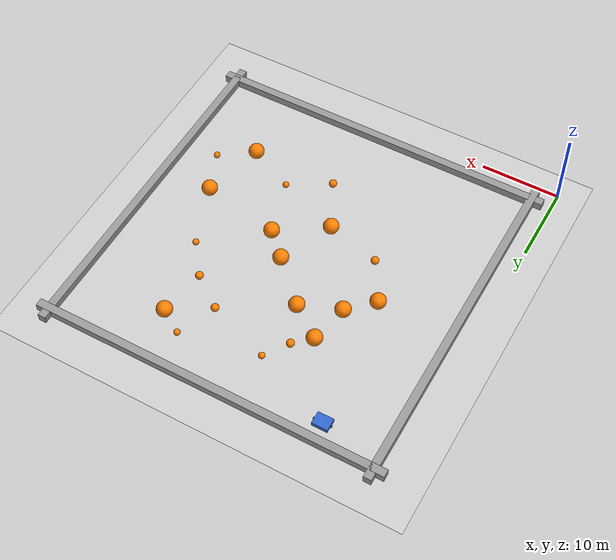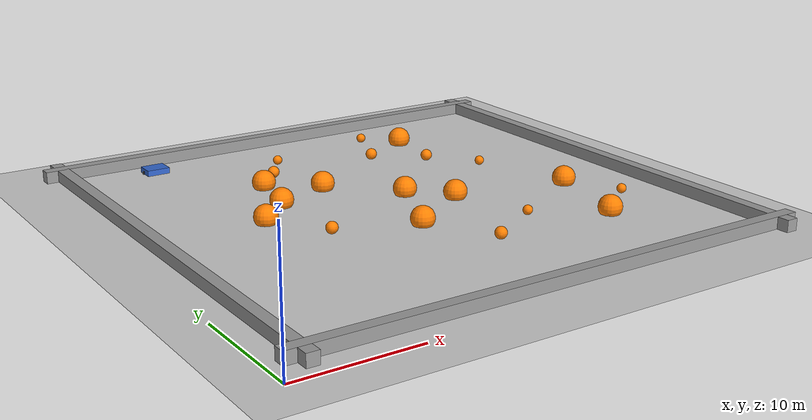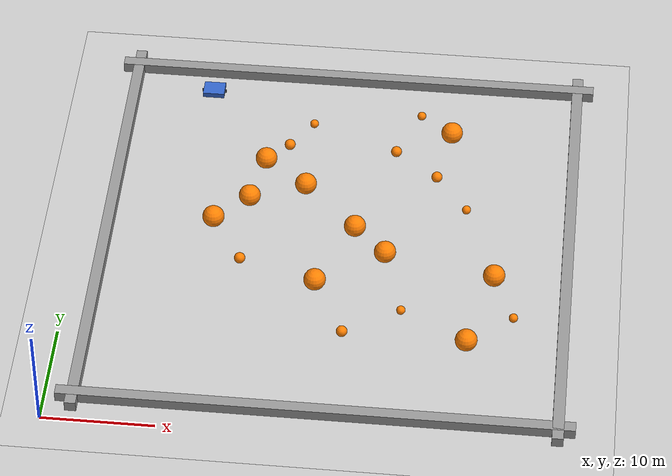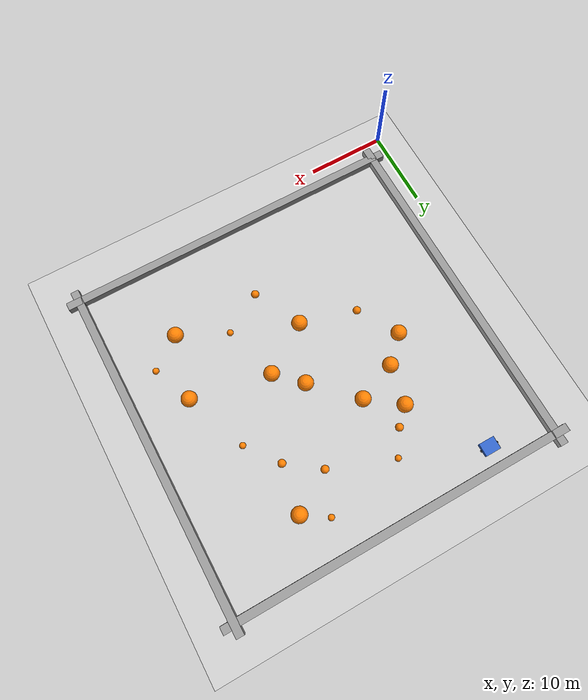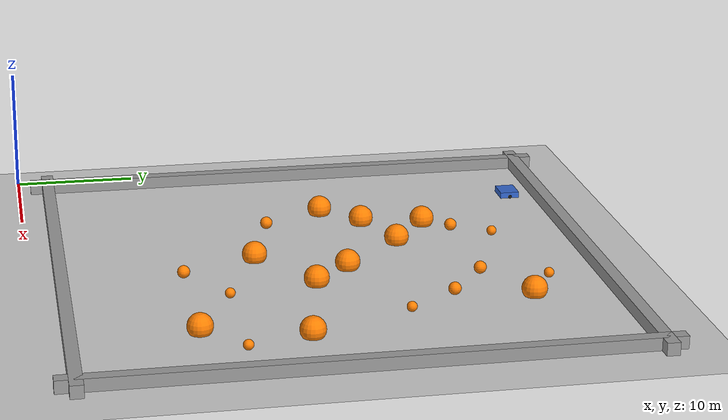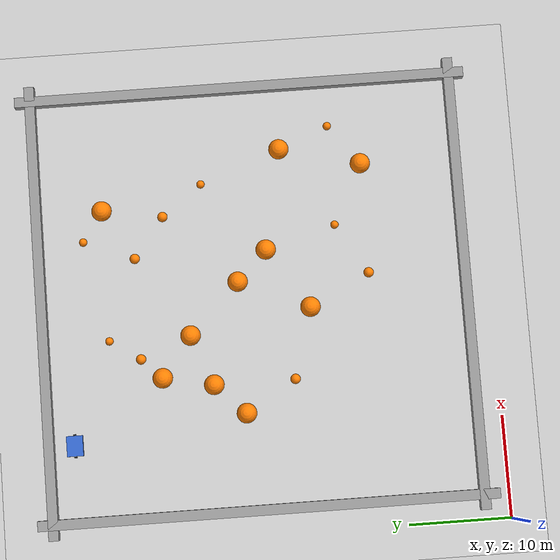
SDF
<?xml version="1.0" ?>
<sdf version="1.6">
  <world name="dyna_obs">
    <physics type="ode">
      <max_step_size>0.01</max_step_size>
      <real_time_factor>1</real_time_factor>
    </physics>
    <include><uri>model://sun</uri></include>
    <include><uri>model://ground_plane</uri></include>

    <!-- Boundary walls (42x42 area) -->
    <model name="wall_north"><static>true</static><pose>23.5 44.5 0.5 0 0 0</pose><link name="link"><collision name="c"><geometry><box><size>45 1 1</size></box></geometry></collision><visual name="v"><geometry><box><size>45 1 1</size></box></geometry><material><ambient>0.6 0.6 0.6 1</ambient></material></visual></link></model>
    <model name="wall_south"><static>true</static><pose>23.5 2.5 0.5 0 0 0</pose><link name="link"><collision name="c"><geometry><box><size>45 1 1</size></box></geometry></collision><visual name="v"><geometry><box><size>45 1 1</size></box></geometry><material><ambient>0.6 0.6 0.6 1</ambient></material></visual></link></model>
    <model name="wall_east"><static>true</static><pose>44.5 23.5 0.5 0 0 0</pose><link name="link"><collision name="c"><geometry><box><size>1 45 1</size></box></geometry></collision><visual name="v"><geometry><box><size>1 45 1</size></box></geometry><material><ambient>0.6 0.6 0.6 1</ambient></material></visual></link></model>
    <model name="wall_west"><static>true</static><pose>2.5 23.5 0.5 0 0 0</pose><link name="link"><collision name="c"><geometry><box><size>1 45 1</size></box></geometry></collision><visual name="v"><geometry><box><size>1 45 1</size></box></geometry><material><ambient>0.6 0.6 0.6 1</ambient></material></visual></link></model>

    <!-- 20 Dynamic obstacles (spawned via ROS2 node, initial positions here) -->
    <!-- Obstacle radii cycle: 0.5, 1.0, 1.0, 0.4 (matching IR-SIM templates) -->
    <model name="dyn_obs_0"><static>false</static><pose>15 20 0.5 0 0 0</pose><link name="link"><inertial><mass>10</mass><inertia><ixx>1</ixx><iyy>1</iyy><izz>1</izz></inertia></inertial><collision name="c"><geometry><sphere><radius>0.5</radius></sphere></geometry></collision><visual name="v"><geometry><sphere><radius>0.5</radius></sphere></geometry><material><ambient>1 0.5 0 1</ambient></material></visual></link></model>
    <model name="dyn_obs_1"><static>false</static><pose>20 30 0.5 0 0 0</pose><link name="link"><inertial><mass>10</mass><inertia><ixx>1</ixx><iyy>1</iyy><izz>1</izz></inertia></inertial><collision name="c"><geometry><sphere><radius>1.0</radius></sphere></geometry></collision><visual name="v"><geometry><sphere><radius>1.0</radius></sphere></geometry><material><ambient>1 0.5 0 1</ambient></material></visual></link></model>
    <model name="dyn_obs_2"><static>false</static><pose>25 25 0.5 0 0 0</pose><link name="link"><inertial><mass>10</mass><inertia><ixx>1</ixx><iyy>1</iyy><izz>1</izz></inertia></inertial><collision name="c"><geometry><sphere><radius>1.0</radius></sphere></geometry></collision><visual name="v"><geometry><sphere><radius>1.0</radius></sphere></geometry><material><ambient>1 0.5 0 1</ambient></material></visual></link></model>
    <model name="dyn_obs_3"><static>false</static><pose>30 15 0.5 0 0 0</pose><link name="link"><inertial><mass>10</mass><inertia><ixx>1</ixx><iyy>1</iyy><izz>1</izz></inertia></inertial><collision name="c"><geometry><sphere><radius>0.4</radius></sphere></geometry></collision><visual name="v"><geometry><sphere><radius>0.4</radius></sphere></geometry><material><ambient>1 0.5 0 1</ambient></material></visual></link></model>
    <model name="dyn_obs_4"><static>false</static><pose>18 35 0.5 0 0 0</pose><link name="link"><inertial><mass>10</mass><inertia><ixx>1</ixx><iyy>1</iyy><izz>1</izz></inertia></inertial><collision name="c"><geometry><sphere><radius>0.5</radius></sphere></geometry></collision><visual name="v"><geometry><sphere><radius>0.5</radius></sphere></geometry><material><ambient>1 0.5 0 1</ambient></material></visual></link></model>
    <model name="dyn_obs_5"><static>false</static><pose>22 18 0.5 0 0 0</pose><link name="link"><inertial><mass>10</mass><inertia><ixx>1</ixx><iyy>1</iyy><izz>1</izz></inertia></inertial><collision name="c"><geometry><sphere><radius>1.0</radius></sphere></geometry></collision><visual name="v"><geometry><sphere><radius>1.0</radius></sphere></geometry><material><ambient>1 0.5 0 1</ambient></material></visual></link></model>
    <model name="dyn_obs_6"><static>false</static><pose>28 22 0.5 0 0 0</pose><link name="link"><inertial><mass>10</mass><inertia><ixx>1</ixx><iyy>1</iyy><izz>1</izz></inertia></inertial><collision name="c"><geometry><sphere><radius>1.0</radius></sphere></geometry></collision><visual name="v"><geometry><sphere><radius>1.0</radius></sphere></geometry><material><ambient>1 0.5 0 1</ambient></material></visual></link></model>
    <model name="dyn_obs_7"><static>false</static><pose>35 28 0.5 0 0 0</pose><link name="link"><inertial><mass>10</mass><inertia><ixx>1</ixx><iyy>1</iyy><izz>1</izz></inertia></inertial><collision name="c"><geometry><sphere><radius>0.4</radius></sphere></geometry></collision><visual name="v"><geometry><sphere><radius>0.4</radius></sphere></geometry><material><ambient>1 0.5 0 1</ambient></material></visual></link></model>
    <model name="dyn_obs_8"><static>false</static><pose>32 32 0.5 0 0 0</pose><link name="link"><inertial><mass>10</mass><inertia><ixx>1</ixx><iyy>1</iyy><izz>1</izz></inertia></inertial><collision name="c"><geometry><sphere><radius>0.5</radius></sphere></geometry></collision><visual name="v"><geometry><sphere><radius>0.5</radius></sphere></geometry><material><ambient>1 0.5 0 1</ambient></material></visual></link></model>
    <model name="dyn_obs_9"><static>false</static><pose>15 28 0.5 0 0 0</pose><link name="link"><inertial><mass>10</mass><inertia><ixx>1</ixx><iyy>1</iyy><izz>1</izz></inertia></inertial><collision name="c"><geometry><sphere><radius>1.0</radius></sphere></geometry></collision><visual name="v"><geometry><sphere><radius>1.0</radius></sphere></geometry><material><ambient>1 0.5 0 1</ambient></material></visual></link></model>
    <model name="dyn_obs_10"><static>false</static><pose>38 20 0.5 0 0 0</pose><link name="link"><inertial><mass>10</mass><inertia><ixx>1</ixx><iyy>1</iyy><izz>1</izz></inertia></inertial><collision name="c"><geometry><sphere><radius>1.0</radius></sphere></geometry></collision><visual name="v"><geometry><sphere><radius>1.0</radius></sphere></geometry><material><ambient>1 0.5 0 1</ambient></material></visual></link></model>
    <model name="dyn_obs_11"><static>false</static><pose>20 38 0.5 0 0 0</pose><link name="link"><inertial><mass>10</mass><inertia><ixx>1</ixx><iyy>1</iyy><izz>1</izz></inertia></inertial><collision name="c"><geometry><sphere><radius>0.4</radius></sphere></geometry></collision><visual name="v"><geometry><sphere><radius>0.4</radius></sphere></geometry><material><ambient>1 0.5 0 1</ambient></material></visual></link></model>
    <model name="dyn_obs_12"><static>false</static><pose>25 12 0.5 0 0 0</pose><link name="link"><inertial><mass>10</mass><inertia><ixx>1</ixx><iyy>1</iyy><izz>1</izz></inertia></inertial><collision name="c"><geometry><sphere><radius>0.5</radius></sphere></geometry></collision><visual name="v"><geometry><sphere><radius>0.5</radius></sphere></geometry><material><ambient>1 0.5 0 1</ambient></material></visual></link></model>
    <model name="dyn_obs_13"><static>false</static><pose>12 25 0.5 0 0 0</pose><link name="link"><inertial><mass>10</mass><inertia><ixx>1</ixx><iyy>1</iyy><izz>1</izz></inertia></inertial><collision name="c"><geometry><sphere><radius>1.0</radius></sphere></geometry></collision><visual name="v"><geometry><sphere><radius>1.0</radius></sphere></geometry><material><ambient>1 0.5 0 1</ambient></material></visual></link></model>
    <model name="dyn_obs_14"><static>false</static><pose>33 38 0.5 0 0 0</pose><link name="link"><inertial><mass>10</mass><inertia><ixx>1</ixx><iyy>1</iyy><izz>1</izz></inertia></inertial><collision name="c"><geometry><sphere><radius>1.0</radius></sphere></geometry></collision><visual name="v"><geometry><sphere><radius>1.0</radius></sphere></geometry><material><ambient>1 0.5 0 1</ambient></material></visual></link></model>
    <model name="dyn_obs_15"><static>false</static><pose>40 15 0.5 0 0 0</pose><link name="link"><inertial><mass>10</mass><inertia><ixx>1</ixx><iyy>1</iyy><izz>1</izz></inertia></inertial><collision name="c"><geometry><sphere><radius>0.4</radius></sphere></geometry></collision><visual name="v"><geometry><sphere><radius>0.4</radius></sphere></geometry><material><ambient>1 0.5 0 1</ambient></material></visual></link></model>
    <model name="dyn_obs_16"><static>false</static><pose>28 35 0.5 0 0 0</pose><link name="link"><inertial><mass>10</mass><inertia><ixx>1</ixx><iyy>1</iyy><izz>1</izz></inertia></inertial><collision name="c"><geometry><sphere><radius>0.5</radius></sphere></geometry></collision><visual name="v"><geometry><sphere><radius>0.5</radius></sphere></geometry><material><ambient>1 0.5 0 1</ambient></material></visual></link></model>
    <model name="dyn_obs_17"><static>false</static><pose>16 33 0.5 0 0 0</pose><link name="link"><inertial><mass>10</mass><inertia><ixx>1</ixx><iyy>1</iyy><izz>1</izz></inertia></inertial><collision name="c"><geometry><sphere><radius>1.0</radius></sphere></geometry></collision><visual name="v"><geometry><sphere><radius>1.0</radius></sphere></geometry><material><ambient>1 0.5 0 1</ambient></material></visual></link></model>
    <model name="dyn_obs_18"><static>false</static><pose>36 12 0.5 0 0 0</pose><link name="link"><inertial><mass>10</mass><inertia><ixx>1</ixx><iyy>1</iyy><izz>1</izz></inertia></inertial><collision name="c"><geometry><sphere><radius>1.0</radius></sphere></geometry></collision><visual name="v"><geometry><sphere><radius>1.0</radius></sphere></geometry><material><ambient>1 0.5 0 1</ambient></material></visual></link></model>
    <model name="dyn_obs_19"><static>false</static><pose>30 40 0.5 0 0 0</pose><link name="link"><inertial><mass>10</mass><inertia><ixx>1</ixx><iyy>1</iyy><izz>1</izz></inertia></inertial><collision name="c"><geometry><sphere><radius>0.4</radius></sphere></geometry></collision><visual name="v"><geometry><sphere><radius>0.4</radius></sphere></geometry><material><ambient>1 0.5 0 1</ambient></material></visual></link></model>

    <!-- Robot spawn: IR-SIM start [10, 42, pi/2] -->
    <include>
      <uri>model://diff_robot</uri>
      <name>diff_robot</name>
      <pose>10 42 0.25 0 0 1.5707963</pose>
    </include>
  </world>
</sdf>

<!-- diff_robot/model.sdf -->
<sdf version="1.6">
  <model name="diff_robot">
    <static>false</static>
    <link name="base_link">
      <inertial>
        <mass>50.0</mass>
        <inertia>
          <ixx>14.583</ixx><iyy>8.333</iyy><izz>22.583</izz>
          <ixy>0</ixy><ixz>0</ixz><iyz>0</iyz>
        </inertia>
      </inertial>
      <collision name="base_collision">
        <geometry>
          <box><size>1.6 2.0 0.5</size></box>
        </geometry>
      </collision>
      <visual name="base_visual">
        <geometry>
          <box><size>1.6 2.0 0.5</size></box>
        </geometry>
        <material>
          <ambient>0.2 0.4 0.8 1</ambient>
          <diffuse>0.2 0.4 0.8 1</diffuse>
        </material>
      </visual>
      <sensor name="lidar2d" type="ray">
        <pose>0.8 0 0.3 0 0 0</pose>
        <ray>
          <scan>
            <horizontal>
              <samples>100</samples>
              <resolution>1</resolution>
              <min_angle>-1.5707963</min_angle>
              <max_angle>1.5707963</max_angle>
            </horizontal>
          </scan>
          <range>
            <min>0.05</min>
            <max>10.0</max>
            <resolution>0.01</resolution>
          </range>
        </ray>
        <plugin name="lidar_plugin" filename="libgazebo_ros_ray_sensor.so">
          <ros>
            <namespace>/robot</namespace>
            <remapping>~/out:=scan</remapping>
          </ros>
          <output_type>sensor_msgs/LaserScan</output_type>
          <frame_name>base_link</frame_name>
        </plugin>
        <always_on>true</always_on>
        <update_rate>10</update_rate>
      </sensor>
    </link>
    <plugin name="diff_drive" filename="libgazebo_ros_diff_drive.so">
      <ros>
        <namespace>/robot</namespace>
      </ros>
      <left_joint>left_wheel_joint</left_joint>
      <right_joint>right_wheel_joint</right_joint>
      <wheel_separation>2.2</wheel_separation>
      <wheel_diameter>0.3</wheel_diameter>
      <max_wheel_torque>100</max_wheel_torque>
      <max_wheel_acceleration>10.0</max_wheel_acceleration>
      <command_topic>cmd_vel</command_topic>
      <odometry_topic>odom</odometry_topic>
      <odometry_frame>odom</odometry_frame>
      <robot_base_frame>base_link</robot_base_frame>
      <publish_odom>true</publish_odom>
      <publish_odom_tf>true</publish_odom_tf>
      <publish_wheel_tf>false</publish_wheel_tf>
    </plugin>
    <link name="left_wheel_link">
      <pose relative_to="base_link">0 1.1 -0.1 1.5707963 0 0</pose>
      <inertial><mass>2</mass><inertia><ixx>0.01</ixx><iyy>0.01</iyy><izz>0.01</izz></inertia></inertial>
      <collision name="collision"><geometry><cylinder><radius>0.15</radius><length>0.1</length></cylinder></geometry></collision>
      <visual name="visual"><geometry><cylinder><radius>0.15</radius><length>0.1</length></cylinder></geometry><material><ambient>0.1 0.1 0.1 1</ambient></material></visual>
    </link>
    <joint name="left_wheel_joint" type="revolute">
      <parent>base_link</parent><child>left_wheel_link</child>
      <axis><xyz>0 1 0</xyz></axis>
      <limit><lower>-1e16</lower><upper>1e16</upper></limit>
    </joint>
    <link name="right_wheel_link">
      <pose relative_to="base_link">0 -1.1 -0.1 1.5707963 0 0</pose>
      <inertial><mass>2</mass><inertia><ixx>0.01</ixx><iyy>0.01</iyy><izz>0.01</izz></inertia></inertial>
      <collision name="collision"><geometry><cylinder><radius>0.15</radius><length>0.1</length></cylinder></geometry></collision>
      <visual name="visual"><geometry><cylinder><radius>0.15</radius><length>0.1</length></cylinder></geometry><material><ambient>0.1 0.1 0.1 1</ambient></material></visual>
    </link>
    <joint name="right_wheel_joint" type="revolute">
      <parent>base_link</parent><child>right_wheel_link</child>
      <axis><xyz>0 1 0</xyz></axis>
      <limit><lower>-1e16</lower><upper>1e16</upper></limit>
    </joint>
  </model>
</sdf>
